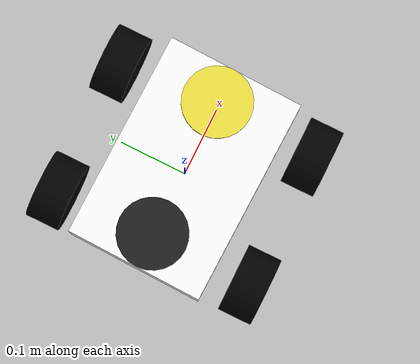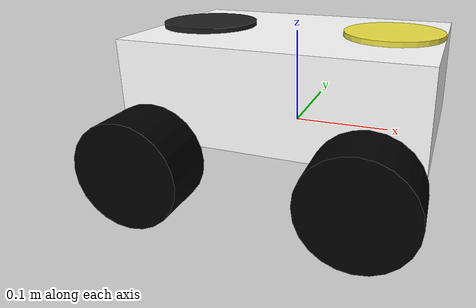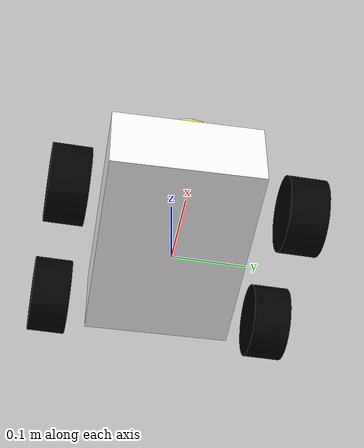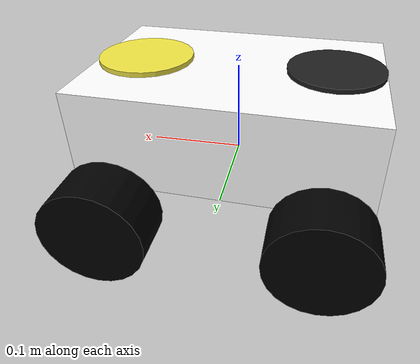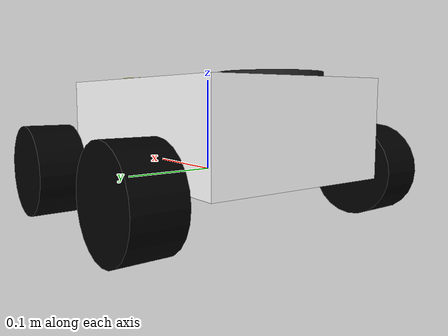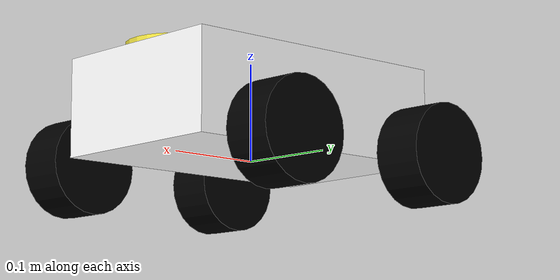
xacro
<?xml version="1.0"?>

<robot xmlns:xacro="http://www.ros.org/wiki/xacro" name="car8">

 	<xacro:include filename="$(find my_description)/urdf/car/replica/car/car8.gazebo" />
	<xacro:property name="length_wheel" value="0.05" />
	<xacro:property name="radius_wheel" value="0.05" />
	<xacro:property name="camera_link" value="0.05" />
	<xacro:macro name="default_inertial" params="mass">
    	<inertial>
        	<mass value="${mass}" />
    		<inertia ixx="1.0" ixy="0.0" ixz="0.0" iyy="1.0" iyz="0.0" izz="1.0" />
        </inertial>
	</xacro:macro>

	<link name="base_footprint">
   		<visual>
			<geometry>
      				<box size="0.001 0.001 0.001"/>
     			</geometry>
			<origin rpy="0 0 0" xyz="0 0 0"/>
   		</visual>
		<xacro:default_inertial mass="0.0001"/>
 	</link>

	<joint name="base_footprint_joint" type="fixed">
		<origin xyz="0 0 0" />
		<parent link="base_footprint" />
		<child link="base_link" />
	</joint>

	<link name="base_link">
   		<visual>
			<geometry>
      				<box size="0.2 .3 .1"/>
     			</geometry>
			<origin rpy="0 0 1.54" xyz="0 0 0.05"/>
			<material name="white">
				<color rgba="1 1 1 1"/>
			</material>
   		</visual>
		<collision>
			<geometry>
       				<box size="0.2 .3 0.1"/>
			</geometry>
		</collision>
		<xacro:default_inertial mass="10"/>
 	</link>

	<link name="mark1_link">
   		<visual>
			<geometry>
      				<cylinder length = "0.01" radius = "0.05"/>
     			</geometry>
			<origin rpy="0 0 0" xyz="-0.1 0 0.1"/>
   		</visual>
		<collision>
			<geometry>
       				<box size="0.001 0.001 0.001"/>
			</geometry>
		</collision>
		<xacro:default_inertial mass="0"/>
 	</link>
	<link name="mark2_link">
   		<visual>
			<geometry>
      				<cylinder length = "0.01" radius = "0.05"/>
     			</geometry>
			<origin rpy="0 0 0" xyz="0.1 0 0.1"/>
   		</visual>
		<collision>
			<geometry>
       				<box size="0.001 0.001 0.001"/>
			</geometry>
		</collision>
		<xacro:default_inertial mass="0"/>
 	</link>
 	<joint name="base_to_mark1" type="fixed">
 	  <parent link="base_link"/>
  	  <child link="mark1_link"/>
  	  <origin rpy="0 0 0" xyz="0 0 0"/>
  	  <axis xyz="0 0 1" />
	</joint>
 	<joint name="base_to_mark2" type="fixed">
 	  <parent link="base_link"/>
  	  <child link="mark2_link"/>
  	  <origin rpy="0 0 0" xyz="0 0 0"/>
  	  <axis xyz="0 0 1" />
	</joint>

 	<link name="wheel_1">
   		<visual>
     			<geometry>
       				<cylinder length="${length_wheel}" radius="${radius_wheel}"/>
     			</geometry>
			<origin rpy="0 0 0" xyz="0 0 0"/>
   			<material name="black">
				<color rgba="0 0 0 1"/>
			</material>
		</visual>
		<collision>
			<geometry>
       				<cylinder length="${length_wheel}" radius="${radius_wheel}"/>
			</geometry>
		</collision>
		<xacro:default_inertial mass="1"/>
 	</link>

 	<link name="wheel_2">
   		<visual>
     			<geometry>
       				<cylinder length="${length_wheel}" radius="${radius_wheel}"/>
     			</geometry>
			<origin rpy="0 0 0" xyz="0 0 0"/>
   			<material name="black"/>
   		</visual>
		<collision>
			<geometry>
       				<cylinder length="${length_wheel}" radius="${radius_wheel}"/>
			</geometry>
		</collision>
		<xacro:default_inertial mass="1"/>

 	</link>

 	<link name="wheel_3">
   		<visual>
     			<geometry>
       				<cylinder length="${length_wheel}" radius="${radius_wheel}"/>
     			</geometry>

			<origin rpy="0 0 0" xyz="0 0 0"/>
   			<material name="black"/>
   		</visual>
		<collision>
			<geometry>
       				<cylinder length="${length_wheel}" radius="${radius_wheel}"/>
			</geometry>
		</collision>
		<xacro:default_inertial mass="1"/>
 	</link>

 	<link name="wheel_4">
   		<visual>
     			<geometry>
       				<cylinder length="${length_wheel}" radius="${radius_wheel}"/>
     			</geometry>
			<origin rpy="0 0 0" xyz="0 0 0" />
   			<material name="black"/>
   		</visual>
		<collision>
			<geometry>
       				<cylinder length="${length_wheel}" radius="${radius_wheel}"/>
			</geometry>
		</collision>
		<xacro:default_inertial mass="1"/>

 	</link>

 <joint name="base_to_wheel1" type="continuous">
   <parent link="base_link"/>
   <child link="wheel_1"/>
   <origin rpy="-1.5707 0 0" xyz="0.1 0.15 0"/>
   <axis xyz="0 0 1" />
 </joint>

 <joint name="base_to_wheel2" type="continuous">
   <axis xyz="0 0 1" />
   <anchor xyz="0 0 0" />
   <limit effort="100" velocity="100" />
   <parent link="base_link"/>
   <child link="wheel_2"/>
   <origin rpy="-1.5707 0 0" xyz="-0.1 0.15 0"/>
</joint>

 <joint name="base_to_wheel3" type="continuous">
   <parent link="base_link"/>
   <axis xyz="0 0 1" />
   <child link="wheel_3"/>
   <origin rpy="-1.5707 0 0" xyz="0.1 -0.15 0"/>
 </joint>

 <joint name="base_to_wheel4" type="continuous">
   <parent link="base_link"/>
   <axis xyz="0 0 1" />
   <child link="wheel_4"/>
   <origin rpy="-1.5707 0 0" xyz="-0.1 -0.15 0"/>
 </joint>

  <!-- Drive controller -->
<gazebo>
  <plugin name="skid_steer_drive_controller" filename="libgazebo_ros_skid_steer_drive.so">
    <updateRate>100.0</updateRate>
    <robotNamespace>car8/</robotNamespace>
    <leftFrontJoint>base_to_wheel1</leftFrontJoint>
    <rightFrontJoint>base_to_wheel3</rightFrontJoint>
    <leftRearJoint>base_to_wheel2</leftRearJoint>
    <rightRearJoint>base_to_wheel4</rightRearJoint>
    <wheelSeparation>4</wheelSeparation>
    <wheelDiameter>0.1</wheelDiameter>
    <commandTopic>cmd_vel</commandTopic>
    <odometryTopic>odom</odometryTopic>
    <robotBaseFrame>base_footprint</robotBaseFrame>
    <odometryFrame>odom</odometryFrame>
    <torque>2</torque>
    <topicName>cmd_vel</topicName>
    <broadcastTF>1</broadcastTF>
  </plugin>
</gazebo>

</robot>
